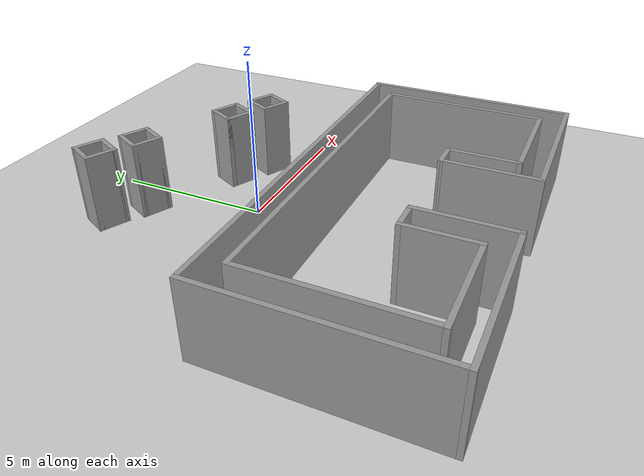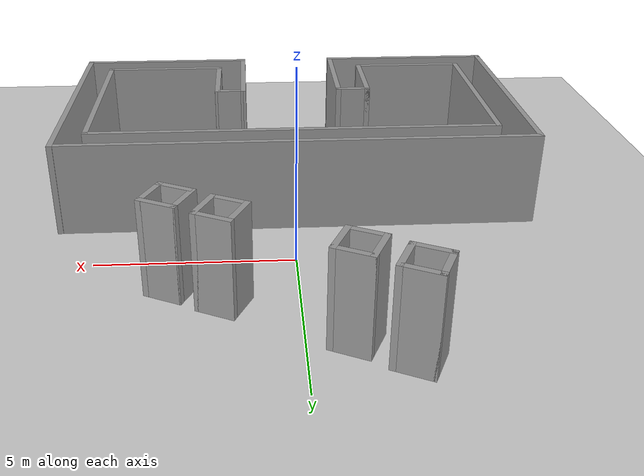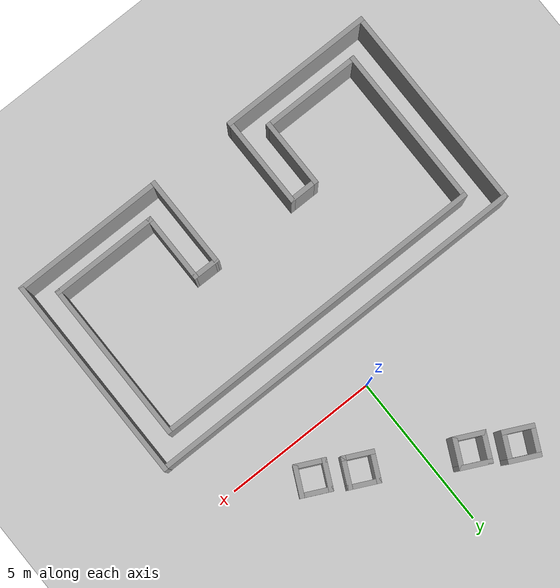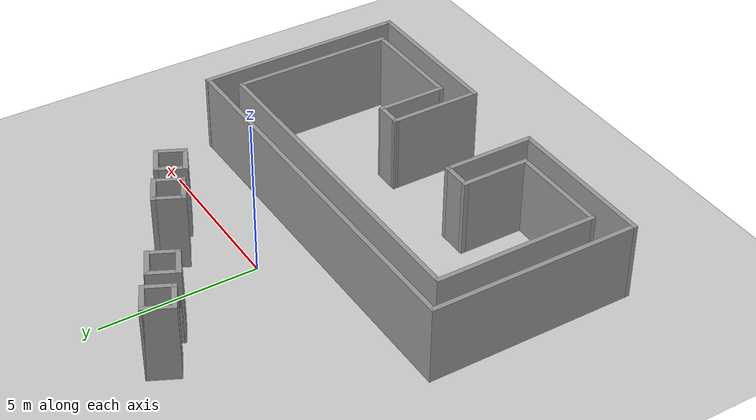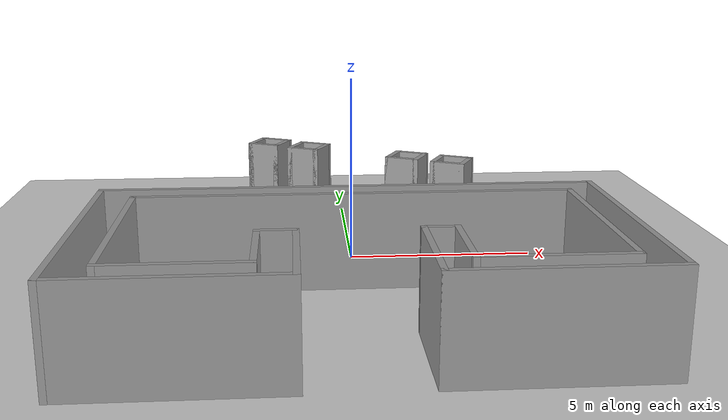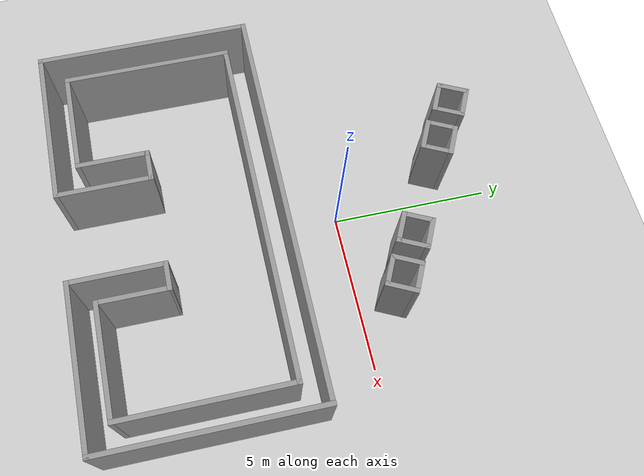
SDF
<sdf version="1.7">
 <world name="default">
  <model name="ground_plane">
   <static>1</static>
   <link name="link">
    <collision name="collision">
     <geometry><plane><normal>0 0 1</normal><size>100 100</size></plane></geometry>
     <surface>
      <contact><collide_bitmask>65535</collide_bitmask></contact>
      <friction><ode><mu>100</mu><mu2>50</mu2></ode></friction>
     </surface>
    </collision>
    <visual name="visual">
     <cast_shadows>0</cast_shadows>
     <geometry><plane><normal>0 0 1</normal><size>100 100</size></plane></geometry>
     <material>
      <script><uri>file://media/materials/scripts/gazebo.material</uri><name>Gazebo/Grey</name></script>
     </material>
    </visual>
   </link>
  </model>
  <model name="ushape">
   <pose>-0.15366 -5.01708 0 0 -0 0</pose>
   <link name="Wall_10">
    <collision name="Wall_10_Collision">
     <geometry><box><size>3 0.15 2.5</size></box></geometry>
     <pose>0 0 1.25 0 -0 0</pose>
    </collision>
    <visual name="Wall_10_Visual">
     <pose>0 0 1.25 0 -0 0</pose>
     <geometry><box><size>3 0.15 2.5</size></box></geometry>
     <material>
      <script><uri>file://media/materials/scripts/gazebo.material</uri><name>Gazebo/Grey</name></script>
      <ambient>1 1 1 1</ambient>
     </material>
     <meta><layer>0</layer></meta>
    </visual>
    <pose>1.40095 -1.87068 0 0 -0 -1.5708</pose>
   </link>
   <link name="Wall_13">
    <collision name="Wall_13_Collision">
     <geometry><box><size>5 0.15 2.5</size></box></geometry>
     <pose>0 0 1.25 0 -0 0</pose>
    </collision>
    <visual name="Wall_13_Visual">
     <pose>0 0 1.25 0 -0 0</pose>
     <geometry><box><size>5 0.15 2.5</size></box></geometry>
     <material>
      <script><uri>file://media/materials/scripts/gazebo.material</uri><name>Gazebo/Grey</name></script>
      <ambient>1 1 1 1</ambient>
     </material>
     <meta><layer>0</layer></meta>
    </visual>
    <pose>3.82595 -3.29568 0 0 -0 0</pose>
   </link>
   <link name="Wall_14">
    <collision name="Wall_14_Collision">
     <geometry><box><size>6.75 0.15 2.5</size></box></geometry>
     <pose>0 0 1.25 0 -0 0</pose>
    </collision>
    <visual name="Wall_14_Visual">
     <pose>0 0 1.25 0 -0 0</pose>
     <geometry><box><size>6.75 0.15 2.5</size></box></geometry>
     <material>
      <script><uri>file://media/materials/scripts/gazebo.material</uri><name>Gazebo/Grey</name></script>
      <ambient>1 1 1 1</ambient>
     </material>
     <meta><layer>0</layer></meta>
    </visual>
    <pose>6.25095 0.004322 0 0 -0 1.5708</pose>
   </link>
   <link name="Wall_16">
    <collision name="Wall_16_Collision">
     <geometry><box><size>1 0.15 2.5</size></box></geometry>
     <pose>0 0 1.25 0 -0 0</pose>
    </collision>
    <visual name="Wall_16_Visual">
     <pose>0 0 1.25 0 -0 0</pose>
     <geometry><box><size>1 0.15 2.5</size></box></geometry>
     <material>
      <script><uri>file://media/materials/scripts/gazebo.material</uri><name>Gazebo/Grey</name></script>
      <ambient>1 1 1 1</ambient>
     </material>
     <meta><layer>0</layer></meta>
    </visual>
    <pose>-1.82595 -0.454322 0 0 -0 3.14159</pose>
   </link>
   <link name="Wall_18">
    <collision name="Wall_18_Collision">
     <geometry><box><size>2.25 0.15 2.5</size></box></geometry>
     <pose>0 0 1.25 0 -0 0</pose>
    </collision>
    <visual name="Wall_18_Visual">
     <pose>0 0 1.25 0 -0 0</pose>
     <geometry><box><size>2.25 0.15 2.5</size></box></geometry>
     <material>
      <script><uri>file://media/materials/scripts/gazebo.material</uri><name>Gazebo/Grey</name></script>
      <ambient>1 1 1 1</ambient>
     </material>
     <meta><layer>0</layer></meta>
    </visual>
    <pose>-2.25095 -1.50432 0 0 -0 -1.5708</pose>
   </link>
   <link name="Wall_19">
    <collision name="Wall_19_Collision">
     <geometry><box><size>3.25 0.15 2.5</size></box></geometry>
     <pose>0 0 1.25 0 -0 0</pose>
    </collision>
    <visual name="Wall_19_Visual">
     <pose>0 0 1.25 0 -0 0</pose>
     <geometry><box><size>3.25 0.15 2.5</size></box></geometry>
     <material>
      <script><uri>file://media/materials/scripts/gazebo.material</uri><name>Gazebo/Grey</name></script>
      <ambient>1 1 1 1</ambient>
     </material>
     <meta><layer>0</layer></meta>
    </visual>
    <pose>-3.80095 -2.55432 0 0 -0 3.14159</pose>
   </link>
   <link name="Wall_2">
    <collision name="Wall_2_Collision">
     <geometry><box><size>3 0.15 2.5</size></box></geometry>
     <pose>0 0 1.25 0 -0 0</pose>
    </collision>
    <visual name="Wall_2_Visual">
     <pose>0 0 1.25 0 -0 0</pose>
     <geometry><box><size>3 0.15 2.5</size></box></geometry>
     <material>
      <script><uri>file://media/materials/scripts/gazebo.material</uri><name>Gazebo/Grey</name></script>
      <ambient>1 1 1 1</ambient>
     </material>
     <meta><layer>0</layer></meta>
    </visual>
    <pose>-1.40095 -1.87932 0 0 -0 -1.5708</pose>
   </link>
   <link name="Wall_20">
    <collision name="Wall_20_Collision">
     <geometry><box><size>5.25 0.15 2.5</size></box></geometry>
     <pose>0 0 1.25 0 -0 0</pose>
    </collision>
    <visual name="Wall_20_Visual">
     <pose>0 0 1.25 0 -0 0</pose>
     <geometry><box><size>5.25 0.15 2.5</size></box></geometry>
     <material>
      <script><uri>file://media/materials/scripts/gazebo.material</uri><name>Gazebo/Grey</name></script>
      <ambient>1 1 1 1</ambient>
     </material>
     <meta><layer>0</layer></meta>
    </visual>
    <pose>-5.35095 -0.004322 0 0 -0 1.5708</pose>
   </link>
   <link name="Wall_21">
    <collision name="Wall_21_Collision">
     <geometry><box><size>11 0.15 2.5</size></box></geometry>
     <pose>0 0 1.25 0 -0 0</pose>
    </collision>
    <visual name="Wall_21_Visual">
     <pose>0 0 1.25 0 -0 0</pose>
     <geometry><box><size>11 0.15 2.5</size></box></geometry>
     <material>
      <script><uri>file://media/materials/scripts/gazebo.material</uri><name>Gazebo/Grey</name></script>
      <ambient>1 1 1 1</ambient>
     </material>
     <meta><layer>0</layer></meta>
    </visual>
    <pose>0.074047 2.54568 0 0 -0 0</pose>
   </link>
   <link name="Wall_22">
    <collision name="Wall_22_Collision">
     <geometry><box><size>5.25 0.15 2.5</size></box></geometry>
     <pose>0 0 1.25 0 -0 0</pose>
    </collision>
    <visual name="Wall_22_Visual">
     <pose>0 0 1.25 0 -0 0</pose>
     <geometry><box><size>5.25 0.15 2.5</size></box></geometry>
     <material>
      <script><uri>file://media/materials/scripts/gazebo.material</uri><name>Gazebo/Grey</name></script>
      <ambient>1 1 1 1</ambient>
     </material>
     <meta><layer>0</layer></meta>
    </visual>
    <pose>5.49905 -0.004322 0 0 -0 -1.5708</pose>
   </link>
   <link name="Wall_23">
    <collision name="Wall_23_Collision">
     <geometry><box><size>3.5 0.15 2.5</size></box></geometry>
     <pose>0 0 1.25 0 -0 0</pose>
    </collision>
    <visual name="Wall_23_Visual">
     <pose>0 0 1.25 0 -0 0</pose>
     <geometry><box><size>3.5 0.15 2.5</size></box></geometry>
     <material>
      <script><uri>file://media/materials/scripts/gazebo.material</uri><name>Gazebo/Grey</name></script>
      <ambient>1 1 1 1</ambient>
     </material>
     <meta><layer>0</layer></meta>
    </visual>
    <pose>3.82405 -2.55432 0 0 -0 3.14159</pose>
   </link>
   <link name="Wall_24">
    <collision name="Wall_24_Collision">
     <geometry><box><size>2.25 0.15 2.5</size></box></geometry>
     <pose>0 0 1.25 0 -0 0</pose>
    </collision>
    <visual name="Wall_24_Visual">
     <pose>0 0 1.25 0 -0 0</pose>
     <geometry><box><size>2.25 0.15 2.5</size></box></geometry>
     <material>
      <script><uri>file://media/materials/scripts/gazebo.material</uri><name>Gazebo/Grey</name></script>
      <ambient>1 1 1 1</ambient>
     </material>
     <meta><layer>0</layer></meta>
    </visual>
    <pose>2.14905 -1.50432 0 0 -0 1.5708</pose>
   </link>
   <link name="Wall_25">
    <collision name="Wall_25_Collision">
     <geometry><box><size>0.898144 0.15 2.5</size></box></geometry>
     <pose>0 0 1.25 0 -0 0</pose>
    </collision>
    <visual name="Wall_25_Visual">
     <pose>0 0 1.25 0 -0 0</pose>
     <geometry><box><size>0.898144 0.15 2.5</size></box></geometry>
     <material>
      <script><uri>file://media/materials/scripts/gazebo.material</uri><name>Gazebo/Grey</name></script>
      <ambient>1 1 1 1</ambient>
     </material>
     <meta><layer>0</layer></meta>
    </visual>
    <pose>1.775 -0.45 0 0 -0 3.13004</pose>
   </link>
   <link name="Wall_3">
    <collision name="Wall_3_Collision">
     <geometry><box><size>5 0.15 2.5</size></box></geometry>
     <pose>0 0 1.25 0 -0 0</pose>
    </collision>
    <visual name="Wall_3_Visual">
     <pose>0 0 1.25 0 -0 0</pose>
     <geometry><box><size>5 0.15 2.5</size></box></geometry>
     <material>
      <script><uri>file://media/materials/scripts/gazebo.material</uri><name>Gazebo/Grey</name></script>
      <ambient>1 1 1 1</ambient>
     </material>
     <meta><layer>0</layer></meta>
    </visual>
    <pose>-3.82595 -3.30432 0 0 -0 3.14159</pose>
   </link>
   <link name="Wall_5">
    <collision name="Wall_5_Collision">
     <geometry><box><size>6.75 0.15 2.5</size></box></geometry>
     <pose>0 0 1.25 0 -0 0</pose>
    </collision>
    <visual name="Wall_5_Visual">
     <pose>0 0 1.25 0 -0 0</pose>
     <geometry><box><size>6.75 0.15 2.5</size></box></geometry>
     <material>
      <script><uri>file://media/materials/scripts/gazebo.material</uri><name>Gazebo/Grey</name></script>
      <ambient>1 1 1 1</ambient>
     </material>
     <meta><layer>0</layer></meta>
    </visual>
    <pose>-6.25095 -0.004322 0 0 -0 1.5708</pose>
   </link>
   <link name="Wall_6">
    <collision name="Wall_6_Collision">
     <geometry><box><size>12.5 0.15 2.5</size></box></geometry>
     <pose>0 0 1.25 0 -0 0</pose>
    </collision>
    <visual name="Wall_6_Visual">
     <pose>0 0 1.25 0 -0 0</pose>
     <geometry><box><size>12.5 0.15 2.5</size></box></geometry>
     <material>
      <script><uri>file://media/materials/scripts/gazebo.material</uri><name>Gazebo/Grey</name></script>
      <ambient>1 1 1 1</ambient>
     </material>
     <meta><layer>0</layer></meta>
    </visual>
    <pose>-0.075953 3.29568 0 0 -0 0</pose>
   </link>
   <static>1</static>
  </model>
  <model name="box1m_clone_clone_1">
   <pose>-1.3059 4.70203 -0 0 0 -0.453285</pose>
   <link name="Wall_0">
    <collision name="Wall_0_Collision">
     <geometry><box><size>1 0.15 2.5</size></box></geometry>
     <pose>0 0 1.25 0 -0 0</pose>
    </collision>
    <visual name="Wall_0_Visual">
     <pose>0 0 1.25 0 -0 0</pose>
     <geometry><box><size>1 0.15 2.5</size></box></geometry>
     <material>
      <script><uri>file://media/materials/scripts/gazebo.material</uri><name>Gazebo/Grey</name></script>
      <ambient>1 1 1 1</ambient>
     </material>
     <meta><layer>0</layer></meta>
    </visual>
    <pose>-1.0425 -0.9775 0 0 -0 -1.5708</pose>
   </link>
   <link name="Wall_1">
    <collision name="Wall_1_Collision">
     <geometry><box><size>1 0.15 2.5</size></box></geometry>
     <pose>0 0 1.25 0 -0 0</pose>
    </collision>
    <visual name="Wall_1_Visual">
     <pose>0 0 1.25 0 -0 0</pose>
     <geometry><box><size>1 0.15 2.5</size></box></geometry>
     <material>
      <script><uri>file://media/materials/scripts/gazebo.material</uri><name>Gazebo/Grey</name></script>
      <ambient>1 1 1 1</ambient>
     </material>
     <meta><layer>0</layer></meta>
    </visual>
    <pose>-0.6175 -1.4025 0 0 -0 0</pose>
   </link>
   <link name="Wall_2">
    <collision name="Wall_2_Collision">
     <geometry><box><size>1 0.15 2.5</size></box></geometry>
     <pose>0 0 1.25 0 -0 0</pose>
    </collision>
    <visual name="Wall_2_Visual">
     <pose>0 0 1.25 0 -0 0</pose>
     <geometry><box><size>1 0.15 2.5</size></box></geometry>
     <material>
      <script><uri>file://media/materials/scripts/gazebo.material</uri><name>Gazebo/Grey</name></script>
      <ambient>1 1 1 1</ambient>
     </material>
     <meta><layer>0</layer></meta>
    </visual>
    <pose>-0.1925 -0.9775 0 0 -0 1.5708</pose>
   </link>
   <link name="Wall_3">
    <collision name="Wall_3_Collision">
     <geometry><box><size>1 0.15 2.5</size></box></geometry>
     <pose>0 0 1.25 0 -0 0</pose>
    </collision>
    <visual name="Wall_3_Visual">
     <pose>0 0 1.25 0 -0 0</pose>
     <geometry><box><size>1 0.15 2.5</size></box></geometry>
     <material>
      <script><uri>file://media/materials/scripts/gazebo.material</uri><name>Gazebo/Grey</name></script>
      <ambient>1 1 1 1</ambient>
     </material>
     <meta><layer>0</layer></meta>
    </visual>
    <pose>-0.6175 -0.5525 0 0 -0 3.14159</pose>
   </link>
   <static>1</static>
  </model>
  <model name="box1m_clone_clone_2">
   <pose>-0.098728 3.97879 0 0 0 -0.453285</pose>
   <link name="Wall_0">
    <collision name="Wall_0_Collision">
     <geometry><box><size>1 0.15 2.5</size></box></geometry>
     <pose>0 0 1.25 0 -0 0</pose>
    </collision>
    <visual name="Wall_0_Visual">
     <pose>0 0 1.25 0 -0 0</pose>
     <geometry><box><size>1 0.15 2.5</size></box></geometry>
     <material>
      <script><uri>file://media/materials/scripts/gazebo.material</uri><name>Gazebo/Grey</name></script>
      <ambient>1 1 1 1</ambient>
     </material>
     <meta><layer>0</layer></meta>
    </visual>
    <pose>-1.0425 -0.9775 0 0 -0 -1.5708</pose>
   </link>
   <link name="Wall_1">
    <collision name="Wall_1_Collision">
     <geometry><box><size>1 0.15 2.5</size></box></geometry>
     <pose>0 0 1.25 0 -0 0</pose>
    </collision>
    <visual name="Wall_1_Visual">
     <pose>0 0 1.25 0 -0 0</pose>
     <geometry><box><size>1 0.15 2.5</size></box></geometry>
     <material>
      <script><uri>file://media/materials/scripts/gazebo.material</uri><name>Gazebo/Grey</name></script>
      <ambient>1 1 1 1</ambient>
     </material>
     <meta><layer>0</layer></meta>
    </visual>
    <pose>-0.6175 -1.4025 0 0 -0 0</pose>
   </link>
   <link name="Wall_2">
    <collision name="Wall_2_Collision">
     <geometry><box><size>1 0.15 2.5</size></box></geometry>
     <pose>0 0 1.25 0 -0 0</pose>
    </collision>
    <visual name="Wall_2_Visual">
     <pose>0 0 1.25 0 -0 0</pose>
     <geometry><box><size>1 0.15 2.5</size></box></geometry>
     <material>
      <script><uri>file://media/materials/scripts/gazebo.material</uri><name>Gazebo/Grey</name></script>
      <ambient>1 1 1 1</ambient>
     </material>
     <meta><layer>0</layer></meta>
    </visual>
    <pose>-0.1925 -0.9775 0 0 -0 1.5708</pose>
   </link>
   <link name="Wall_3">
    <collision name="Wall_3_Collision">
     <geometry><box><size>1 0.15 2.5</size></box></geometry>
     <pose>0 0 1.25 0 -0 0</pose>
    </collision>
    <visual name="Wall_3_Visual">
     <pose>0 0 1.25 0 -0 0</pose>
     <geometry><box><size>1 0.15 2.5</size></box></geometry>
     <material>
      <script><uri>file://media/materials/scripts/gazebo.material</uri><name>Gazebo/Grey</name></script>
      <ambient>1 1 1 1</ambient>
     </material>
     <meta><layer>0</layer></meta>
    </visual>
    <pose>-0.6175 -0.5525 0 0 -0 3.14159</pose>
   </link>
   <static>1</static>
  </model>
  <model name="box1m_clone_clone_4">
   <pose>2.73002 2.41831 0 0 0 -0.453285</pose>
   <link name="Wall_0">
    <collision name="Wall_0_Collision">
     <geometry><box><size>1 0.15 2.5</size></box></geometry>
     <pose>0 0 1.25 0 -0 0</pose>
    </collision>
    <visual name="Wall_0_Visual">
     <pose>0 0 1.25 0 -0 0</pose>
     <geometry><box><size>1 0.15 2.5</size></box></geometry>
     <material>
      <script><uri>file://media/materials/scripts/gazebo.material</uri><name>Gazebo/Grey</name></script>
      <ambient>1 1 1 1</ambient>
     </material>
     <meta><layer>0</layer></meta>
    </visual>
    <pose>-1.0425 -0.9775 0 0 -0 -1.5708</pose>
   </link>
   <link name="Wall_1">
    <collision name="Wall_1_Collision">
     <geometry><box><size>1 0.15 2.5</size></box></geometry>
     <pose>0 0 1.25 0 -0 0</pose>
    </collision>
    <visual name="Wall_1_Visual">
     <pose>0 0 1.25 0 -0 0</pose>
     <geometry><box><size>1 0.15 2.5</size></box></geometry>
     <material>
      <script><uri>file://media/materials/scripts/gazebo.material</uri><name>Gazebo/Grey</name></script>
      <ambient>1 1 1 1</ambient>
     </material>
     <meta><layer>0</layer></meta>
    </visual>
    <pose>-0.6175 -1.4025 0 0 -0 0</pose>
   </link>
   <link name="Wall_2">
    <collision name="Wall_2_Collision">
     <geometry><box><size>1 0.15 2.5</size></box></geometry>
     <pose>0 0 1.25 0 -0 0</pose>
    </collision>
    <visual name="Wall_2_Visual">
     <pose>0 0 1.25 0 -0 0</pose>
     <geometry><box><size>1 0.15 2.5</size></box></geometry>
     <material>
      <script><uri>file://media/materials/scripts/gazebo.material</uri><name>Gazebo/Grey</name></script>
      <ambient>1 1 1 1</ambient>
     </material>
     <meta><layer>0</layer></meta>
    </visual>
    <pose>-0.1925 -0.9775 0 0 -0 1.5708</pose>
   </link>
   <link name="Wall_3">
    <collision name="Wall_3_Collision">
     <geometry><box><size>1 0.15 2.5</size></box></geometry>
     <pose>0 0 1.25 0 -0 0</pose>
    </collision>
    <visual name="Wall_3_Visual">
     <pose>0 0 1.25 0 -0 0</pose>
     <geometry><box><size>1 0.15 2.5</size></box></geometry>
     <material>
      <script><uri>file://media/materials/scripts/gazebo.material</uri><name>Gazebo/Grey</name></script>
      <ambient>1 1 1 1</ambient>
     </material>
     <meta><layer>0</layer></meta>
    </visual>
    <pose>-0.6175 -0.5525 0 0 -0 3.14159</pose>
   </link>
   <static>1</static>
  </model>
  <model name="box1m_clone_clone_5">
   <pose>3.94843 1.747 0 0 0 -0.453285</pose>
   <link name="Wall_0">
    <collision name="Wall_0_Collision">
     <geometry><box><size>1 0.15 2.5</size></box></geometry>
     <pose>0 0 1.25 0 -0 0</pose>
    </collision>
    <visual name="Wall_0_Visual">
     <pose>0 0 1.25 0 -0 0</pose>
     <geometry><box><size>1 0.15 2.5</size></box></geometry>
     <material>
      <script><uri>file://media/materials/scripts/gazebo.material</uri><name>Gazebo/Grey</name></script>
      <ambient>1 1 1 1</ambient>
     </material>
     <meta><layer>0</layer></meta>
    </visual>
    <pose>-1.0425 -0.9775 0 0 -0 -1.5708</pose>
   </link>
   <link name="Wall_1">
    <collision name="Wall_1_Collision">
     <geometry><box><size>1 0.15 2.5</size></box></geometry>
     <pose>0 0 1.25 0 -0 0</pose>
    </collision>
    <visual name="Wall_1_Visual">
     <pose>0 0 1.25 0 -0 0</pose>
     <geometry><box><size>1 0.15 2.5</size></box></geometry>
     <material>
      <script><uri>file://media/materials/scripts/gazebo.material</uri><name>Gazebo/Grey</name></script>
      <ambient>1 1 1 1</ambient>
     </material>
     <meta><layer>0</layer></meta>
    </visual>
    <pose>-0.6175 -1.4025 0 0 -0 0</pose>
   </link>
   <link name="Wall_2">
    <collision name="Wall_2_Collision">
     <geometry><box><size>1 0.15 2.5</size></box></geometry>
     <pose>0 0 1.25 0 -0 0</pose>
    </collision>
    <visual name="Wall_2_Visual">
     <pose>0 0 1.25 0 -0 0</pose>
     <geometry><box><size>1 0.15 2.5</size></box></geometry>
     <material>
      <script><uri>file://media/materials/scripts/gazebo.material</uri><name>Gazebo/Grey</name></script>
      <ambient>1 1 1 1</ambient>
     </material>
     <meta><layer>0</layer></meta>
    </visual>
    <pose>-0.1925 -0.9775 0 0 -0 1.5708</pose>
   </link>
   <link name="Wall_3">
    <collision name="Wall_3_Collision">
     <geometry><box><size>1 0.15 2.5</size></box></geometry>
     <pose>0 0 1.25 0 -0 0</pose>
    </collision>
    <visual name="Wall_3_Visual">
     <pose>0 0 1.25 0 -0 0</pose>
     <geometry><box><size>1 0.15 2.5</size></box></geometry>
     <material>
      <script><uri>file://media/materials/scripts/gazebo.material</uri><name>Gazebo/Grey</name></script>
      <ambient>1 1 1 1</ambient>
     </material>
     <meta><layer>0</layer></meta>
    </visual>
    <pose>-0.6175 -0.5525 0 0 -0 3.14159</pose>
   </link>
   <static>1</static>
  </model>
 </world>
</sdf>
